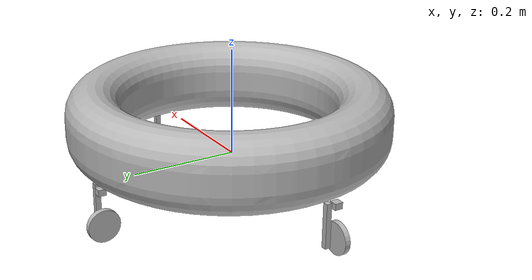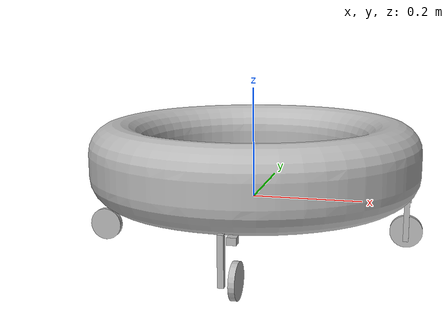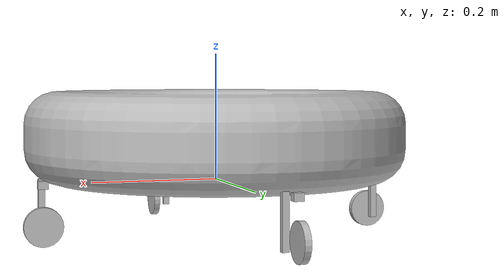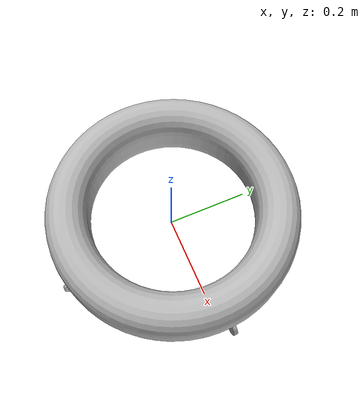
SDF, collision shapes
<?xml version='1.0'?>
<sdf version='1.7'>
  <model name='wow_craft'>
    <enable_wind>true</enable_wind>

    <link name="base_link">
      <visual name="visual">
        <geometry>
          <mesh>
            <uri>model://wow_craft/meshes/wow_craft3.stl</uri>
          </mesh>
        </geometry>
      </visual>
      <collision name="collision">
        <geometry>
          <mesh>
            <uri>model://wow_craft/meshes/100.stl</uri>
          </mesh>
        </geometry>
      </collision>
      <inertial>
        <pose>0 0 0 0 0 0</pose>
        <mass>10.0</mass>
        <inertia>
          <ixx>0.3</ixx>
          <ixy>0</ixy>
          <iyy>0.3</iyy>
          <iyz>0</iyz>
          <izz>0.6</izz>
        </inertia>
      </inertial>
    </link>

    <link name="thruster_1_link">
      <pose>0.28 0 -0.01 0 0 -1.570796</pose>
      <visual name="visual">
        <geometry>
          <mesh>
            <uri>model://wam-v/meshes/engine.dae</uri>
            <scale>0.1 0.1 0.1</scale>
          </mesh>
        </geometry>
      </visual>
      <collision name="engine_vertical_axis_collision">
        <pose>-0.016 0 -0.0215 0 0 0</pose>
        <geometry>
          <box>
            <size>0.01 0.01 0.083</size>
          </box>
        </geometry>
      </collision>
      <collision name="engine_rear_end_collision">
        <pose>-0.034 0 0.012 0 0 0</pose>
        <geometry>
          <box>
            <size>0.015 0.015 0.012</size>
          </box>
        </geometry>
      </collision>
      <inertial>
        <mass>0.1</mass>
        <inertia>
          <ixx>0.0001</ixx>
          <ixy>0</ixy>
          <iyy>0.0001</iyy>
          <iyz>0</iyz>
          <izz>0.0001</izz>
        </inertia>
      </inertial>
    </link>
    <joint name="thruster_1_joint" type="revolute">
      <parent>base_link</parent>
      <child>thruster_1_link</child>
      <axis>
        <xyz>0 0 1</xyz>
        <limit>
          <lower>0</lower>
          <upper>0</upper>
        </limit>
        <dynamics>
          <damping>0.05</damping>
        </dynamics>
      </axis>
    </joint>

    <link name="thruster_1_propeller_link">
      <pose relative_to="thruster_1_propeller_joint">0 0 0 0 0 0</pose>
      <visual name="visual">
        <geometry>
          <mesh>
            <uri>model://wam-v/meshes/propeller.dae</uri>
            <scale>0.1 0.1 0.1</scale>
          </mesh>
        </geometry>
      </visual>
      <collision name="collision">
        <pose>-0.011 0 0 0 1.570796 0</pose>
        <geometry>
          <cylinder>
            <length>0.01</length>
            <radius>0.03</radius>
          </cylinder>
        </geometry>
      </collision>
      <inertial>
        <mass>0.1</mass>
        <inertia>
          <ixx>0.0001</ixx>
          <ixy>0</ixy>
          <iyy>0.0001</iyy>
          <iyz>0</iyz>
          <izz>0.0001</izz>
        </inertia>
      </inertial>
    </link>
    <joint name="thruster_1_propeller_joint" type="revolute">
      <pose relative_to="thruster_1_link">-0.0278156 0 -0.0509371 0 0 0</pose>
      <parent>thruster_1_link</parent>
      <child>thruster_1_propeller_link</child>
      <axis>
        <xyz>1 0 0</xyz>
        <dynamics>
          <damping>0.01</damping>
        </dynamics>
        <limit>
          <lower>-1e+16</lower>
          <upper>1e+16</upper>
        </limit>
      </axis>
    </joint>

    <link name="thruster_2_link">
      <pose>0 0.28 -0.01 0 0 0</pose>
      <visual name="visual">
        <geometry>
          <mesh>
            <uri>model://wam-v/meshes/engine.dae</uri>
            <scale>0.1 0.1 0.1</scale>
          </mesh>
        </geometry>
      </visual>
      <collision name="engine_vertical_axis_collision">
        <pose>-0.016 0 -0.0215 0 0 0</pose>
        <geometry>
          <box>
            <size>0.01 0.01 0.083</size>
          </box>
        </geometry>
      </collision>
      <collision name="engine_rear_end_collision">
        <pose>-0.034 0 0.012 0 0 0</pose>
        <geometry>
          <box>
            <size>0.015 0.015 0.012</size>
          </box>
        </geometry>
      </collision>
      <inertial>
        <mass>0.1</mass>
        <inertia>
          <ixx>0.0001</ixx>
          <ixy>0</ixy>
          <iyy>0.0001</iyy>
          <iyz>0</iyz>
          <izz>0.0001</izz>
        </inertia>
      </inertial>
    </link>
    <joint name="thruster_2_joint" type="revolute">
      <parent>base_link</parent>
      <child>thruster_2_link</child>
      <axis>
        <xyz>0 0 1</xyz>
        <limit>
          <lower>0</lower>
          <upper>0</upper>
        </limit>
        <dynamics>
          <damping>0.05</damping>
        </dynamics>
      </axis>
    </joint>

    <link name="thruster_2_propeller_link">
      <pose relative_to="thruster_2_propeller_joint">0 0 0 0 0 0</pose>
      <visual name="visual">
        <geometry>
          <mesh>
            <uri>model://wam-v/meshes/propeller.dae</uri>
            <scale>0.1 0.1 0.1</scale>
          </mesh>
        </geometry>
      </visual>
      <collision name="collision">
        <pose>-0.011 0 0 0 1.570796 0</pose>
        <geometry>
          <cylinder>
            <length>0.01</length>
            <radius>0.03</radius>
          </cylinder>
        </geometry>
      </collision>
      <inertial>
        <mass>0.1</mass>
        <inertia>
          <ixx>0.0001</ixx>
          <ixy>0</ixy>
          <iyy>0.0001</iyy>
          <iyz>0</iyz>
          <izz>0.0001</izz>
        </inertia>
      </inertial>
    </link>
    <joint name="thruster_2_propeller_joint" type="revolute">
      <pose relative_to="thruster_2_link">-0.0278156 0 -0.0509371 0 0 0</pose>
      <parent>thruster_2_link</parent>
      <child>thruster_2_propeller_link</child>
      <axis>
        <xyz>1 0 0</xyz>
        <dynamics>
          <damping>0.01</damping>
        </dynamics>
        <limit>
          <lower>-1e+16</lower>
          <upper>1e+16</upper>
        </limit>
      </axis>
    </joint>

    <link name="thruster_3_link">
      <pose>-0.28 0 -0.01 0 0 1.570796</pose>
      <visual name="visual">
        <geometry>
          <mesh>
            <uri>model://wam-v/meshes/engine.dae</uri>
            <scale>0.1 0.1 0.1</scale>
          </mesh>
        </geometry>
      </visual>
      <collision name="engine_vertical_axis_collision">
        <pose>-0.016 0 -0.0215 0 0 0</pose>
        <geometry>
          <box>
            <size>0.01 0.01 0.083</size>
          </box>
        </geometry>
      </collision>
      <collision name="engine_rear_end_collision">
        <pose>-0.034 0 0.012 0 0 0</pose>
        <geometry>
          <box>
            <size>0.015 0.015 0.012</size>
          </box>
        </geometry>
      </collision>
      <inertial>
        <mass>0.1</mass>
        <inertia>
          <ixx>0.0001</ixx>
          <ixy>0</ixy>
          <iyy>0.0001</iyy>
          <iyz>0</iyz>
          <izz>0.0001</izz>
        </inertia>
      </inertial>
    </link>
    <joint name="thruster_3_joint" type="revolute">
      <parent>base_link</parent>
      <child>thruster_3_link</child>
      <axis>
        <xyz>0 0 1</xyz>
        <limit>
          <lower>0</lower>
          <upper>0</upper>
        </limit>
        <dynamics>
          <damping>0.05</damping>
        </dynamics>
      </axis>
    </joint>

    <link name="thruster_3_propeller_link">
      <pose relative_to="thruster_3_propeller_joint">0 0 0 0 0 0</pose>
      <visual name="visual">
        <geometry>
          <mesh>
            <uri>model://wam-v/meshes/propeller.dae</uri>
            <scale>0.1 0.1 0.1</scale>
          </mesh>
        </geometry>
      </visual>
      <collision name="collision">
        <pose>-0.011 0 0 0 1.570796 0</pose>
        <geometry>
          <cylinder>
            <length>0.01</length>
            <radius>0.03</radius>
          </cylinder>
        </geometry>
      </collision>
      <inertial>
        <mass>0.1</mass>
        <inertia>
          <ixx>0.0001</ixx>
          <ixy>0</ixy>
          <iyy>0.0001</iyy>
          <iyz>0</iyz>
          <izz>0.0001</izz>
        </inertia>
      </inertial>
    </link>
    <joint name="thruster_3_propeller_joint" type="revolute">
      <pose relative_to="thruster_3_link">-0.0278156 0 -0.0509371 0 0 0</pose>
      <parent>thruster_3_link</parent>
      <child>thruster_3_propeller_link</child>
      <axis>
        <xyz>1 0 0</xyz>
        <dynamics>
          <damping>0.01</damping>
        </dynamics>
        <limit>
          <lower>-1e+16</lower>
          <upper>1e+16</upper>
        </limit>
      </axis>
    </joint>

    <link name="thruster_4_link">
      <pose>0 -0.28 -0.01 0 0 3.141592</pose>
      <visual name="visual">
        <geometry>
          <mesh>
            <uri>model://wam-v/meshes/engine.dae</uri>
            <scale>0.1 0.1 0.1</scale>
          </mesh>
        </geometry>
      </visual>
      <collision name="engine_vertical_axis_collision">
        <pose>-0.016 0 -0.0215 0 0 0</pose>
        <geometry>
          <box>
            <size>0.01 0.01 0.083</size>
          </box>
        </geometry>
      </collision>
      <collision name="engine_rear_end_collision">
        <pose>-0.034 0 0.012 0 0 0</pose>
        <geometry>
          <box>
            <size>0.015 0.015 0.012</size>
          </box>
        </geometry>
      </collision>
      <inertial>
        <mass>0.1</mass>
        <inertia>
          <ixx>0.0001</ixx>
          <ixy>0</ixy>
          <iyy>0.0001</iyy>
          <iyz>0</iyz>
          <izz>0.0001</izz>
        </inertia>
      </inertial>
    </link>
    <joint name="thruster_4_joint" type="revolute">
      <parent>base_link</parent>
      <child>thruster_4_link</child>
      <axis>
        <xyz>0 0 1</xyz>
        <limit>
          <lower>0</lower>
          <upper>0</upper>
        </limit>
        <dynamics>
          <damping>0.05</damping>
        </dynamics>
      </axis>
    </joint>

    <link name="thruster_4_propeller_link">
      <pose relative_to="thruster_4_propeller_joint">0 0 0 0 0 0</pose>
      <visual name="visual">
        <geometry>
          <mesh>
            <uri>model://wam-v/meshes/propeller.dae</uri>
            <scale>0.1 0.1 0.1</scale>
          </mesh>
        </geometry>
      </visual>
      <collision name="collision">
        <pose>-0.011 0 0 0 1.570796 0</pose>
        <geometry>
          <cylinder>
            <length>0.01</length>
            <radius>0.03</radius>
          </cylinder>
        </geometry>
      </collision>
      <inertial>
        <mass>0.1</mass>
        <inertia>
          <ixx>0.0001</ixx>
          <ixy>0</ixy>
          <iyy>0.0001</iyy>
          <iyz>0</iyz>
          <izz>0.0001</izz>
        </inertia>
      </inertial>
    </link>
    <joint name="thruster_4_propeller_joint" type="revolute">
      <pose relative_to="thruster_4_link">-0.0278156 0 -0.0509371 0 0 0</pose>
      <parent>thruster_4_link</parent>
      <child>thruster_4_propeller_link</child>
      <axis>
        <xyz>1 0 0</xyz>
        <dynamics>
          <damping>0.01</damping>
        </dynamics>
        <limit>
          <lower>-1e+16</lower>
          <upper>1e+16</upper>
        </limit>
      </axis>
    </joint>

    <!-- Sensors -->
    <link name="imu_link">
      <inertial>
        <pose>0 0 0 0 0 0</pose>
        <mass>0.15</mass>
        <inertia>
          <ixx>0.00001</ixx>
          <ixy>0</ixy>
          <ixz>0</ixz>
          <iyy>0.00002</iyy>
          <iyz>0</iyz>
          <izz>0.00002</izz>
        </inertia>
      </inertial>
      <sensor name="imu_sensor" type="imu">
        <pose>0 0 0 0 0 0</pose>
        <always_on>1</always_on>
        <update_rate>1000.0</update_rate>
      </sensor>
    </link>
    <joint name="imu_joint" type="revolute">
      <child>imu_link</child>
      <parent>base_link</parent>
      <axis>
        <xyz>0 0 1</xyz>
        <limit>
          <lower>0</lower>
          <upper>0</upper>
          <effort>0</effort>
          <velocity>0</velocity>
        </limit>
        <dynamics>
          <damping>1.0</damping>
        </dynamics>
      </axis>
    </joint>

    <!-- Joint state and force plugins -->
    <plugin filename="gz-sim-joint-state-publisher-system"
      name="gz::sim::systems::JointStatePublisher">
    </plugin>
    <plugin filename="gz-sim-apply-joint-force-system"
      name="gz::sim::systems::ApplyJointForce">
      <joint_name>thruster_1_joint</joint_name>
    </plugin>
    <plugin filename="gz-sim-apply-joint-force-system"
      name="gz::sim::systems::ApplyJointForce">
      <joint_name>thruster_2_joint</joint_name>
    </plugin>
    <plugin filename="gz-sim-apply-joint-force-system"
      name="gz::sim::systems::ApplyJointForce">
      <joint_name>thruster_3_joint</joint_name>
    </plugin>
    <plugin filename="gz-sim-apply-joint-force-system"
      name="gz::sim::systems::ApplyJointForce">
      <joint_name>thruster_4_joint</joint_name>
    </plugin>

    <!-- Thruster plugins -->
    <plugin
        filename="gz-sim-thruster-system"
        name="gz::sim::systems::Thruster">
      <namespace>wow_craft</namespace>
      <joint_name>thruster_1_propeller_joint</joint_name>
      <use_angvel_cmd>0</use_angvel_cmd>
      <fluid_density>1000</fluid_density>
      <propeller_diameter>0.06</propeller_diameter>
      <thrust_coefficient>0.01</thrust_coefficient>
      <velocity_control>1</velocity_control>
      <max_thrust_cmd>200.0</max_thrust_cmd>
      <min_thrust_cmd>-200.0</min_thrust_cmd>
    </plugin>

    <plugin
        filename="gz-sim-thruster-system"
        name="gz::sim::systems::Thruster">
      <namespace>wow_craft</namespace>
      <joint_name>thruster_2_propeller_joint</joint_name>
      <use_angvel_cmd>0</use_angvel_cmd>
      <fluid_density>1000</fluid_density>
      <propeller_diameter>0.06</propeller_diameter>
      <thrust_coefficient>0.01</thrust_coefficient>
      <velocity_control>1</velocity_control>
      <max_thrust_cmd>200.0</max_thrust_cmd>
      <min_thrust_cmd>-200.0</min_thrust_cmd>
    </plugin>

    <plugin
        filename="gz-sim-thruster-system"
        name="gz::sim::systems::Thruster">
      <namespace>wow_craft</namespace>
      <joint_name>thruster_3_propeller_joint</joint_name>
      <use_angvel_cmd>0</use_angvel_cmd>
      <fluid_density>1000</fluid_density>
      <propeller_diameter>0.06</propeller_diameter>
      <thrust_coefficient>0.01</thrust_coefficient>
      <velocity_control>1</velocity_control>
      <max_thrust_cmd>200.0</max_thrust_cmd>
      <min_thrust_cmd>-200.0</min_thrust_cmd>
    </plugin>

    <plugin
        filename="gz-sim-thruster-system"
        name="gz::sim::systems::Thruster">
      <namespace>wow_craft</namespace>
      <joint_name>thruster_4_propeller_joint</joint_name>
      <use_angvel_cmd>0</use_angvel_cmd>
      <fluid_density>1000</fluid_density>
      <propeller_diameter>0.06</propeller_diameter>
      <thrust_coefficient>0.01</thrust_coefficient>
      <velocity_control>1</velocity_control>
      <max_thrust_cmd>200.0</max_thrust_cmd>
      <min_thrust_cmd>-200.0</min_thrust_cmd>
    </plugin>

    <!-- Hydrodynamics plugin -->
    <plugin
        filename="gz-waves1-hydrodynamics-system"
        name="gz::sim::systems::Hydrodynamics">
        <enable>wow_craft</enable>

        <hydrodynamics>
          <damping_on>1</damping_on>
          <viscous_drag_on>1</viscous_drag_on>
          <pressure_drag_on>1</pressure_drag_on>

          <!-- Linear and Angular Damping -->
          <cDampL1>1.0E-6</cDampL1>
          <cDampL2>1.0E-6</cDampL2>
          <cDampR1>1.0E-6</cDampR1>
          <cDampR2>1.0E-6</cDampR2>

          <!-- 'Pressure' Drag -->
          <cPDrag1>50</cPDrag1>
          <cPDrag2>50</cPDrag2>
          <fPDrag>1.0</fPDrag>
          <cSDrag1>50</cSDrag1>
          <cSDrag2>50</cSDrag2>
          <fSDrag>0.4</fSDrag>
          <vRDrag>1.0</vRDrag>
        </hydrodynamics>
    </plugin>

    <!-- ArduPilot plugin -->
    <plugin name="ArduPilotPlugin" filename="ArduPilotPlugin">
      <fdm_addr>127.0.0.1</fdm_addr>
      <fdm_port_in>9002</fdm_port_in>
      <connectionTimeoutMaxCount>5</connectionTimeoutMaxCount>
      <lock_step>1</lock_step>
      <modelXYZToAirplaneXForwardZDown>0 0 0 3.141593 0 0</modelXYZToAirplaneXForwardZDown>
      <gazeboXYZToNED>0 0 0 3.141593 0 1.57079632</gazeboXYZToNED>
      <imuName>imu_sensor</imuName>

      <!--
        SERVO1_FUNCTION 26 (GroundSteering)
      -->
      <control channel="0">
        <jointName>thruster_1_joint</jointName>
        <useForce>1</useForce>
        <multiplier>3.1415926</multiplier>
        <offset>-0.5</offset>
        <servo_min>1000</servo_min>
        <servo_max>2000</servo_max>
        <type>POSITION</type>
        <p_gain>500.0</p_gain>
        <i_gain>0</i_gain>
        <d_gain>10</d_gain>
        <i_max>-1</i_max>
        <i_min>0</i_min>
        <cmd_max>5000.0</cmd_max>
        <cmd_min>-5000.0</cmd_min>
      </control>

      <control channel="0">
        <jointName>thruster_2_joint</jointName>
        <useForce>1</useForce>
        <multiplier>3.1415926</multiplier>
        <offset>-0.5</offset>
        <servo_min>1000</servo_min>
        <servo_max>2000</servo_max>
        <type>POSITION</type>
        <p_gain>500.0</p_gain>
        <i_gain>0</i_gain>
        <d_gain>10</d_gain>
        <i_max>-1</i_max>
        <i_min>0</i_min>
        <cmd_max>5000.0</cmd_max>
        <cmd_min>-5000.0</cmd_min>
      </control>

      <control channel="0">
        <jointName>thruster_3_joint</jointName>
        <useForce>1</useForce>
        <multiplier>3.1415926</multiplier>
        <offset>-0.5</offset>
        <servo_min>1000</servo_min>
        <servo_max>2000</servo_max>
        <type>POSITION</type>
        <p_gain>500.0</p_gain>
        <i_gain>0</i_gain>
        <d_gain>10</d_gain>
        <i_max>-1</i_max>
        <i_min>0</i_min>
        <cmd_max>5000.0</cmd_max>
        <cmd_min>-5000.0</cmd_min>
      </control>

      <control channel="0">
        <jointName>thruster_4_joint</jointName>
        <useForce>1</useForce>
        <multiplier>3.1415926</multiplier>
        <offset>-0.5</offset>
        <servo_min>1000</servo_min>
        <servo_max>2000</servo_max>
        <type>POSITION</type>
        <p_gain>500.0</p_gain>
        <i_gain>0</i_gain>
        <d_gain>10</d_gain>
        <i_max>-1</i_max>
        <i_min>0</i_min>
        <cmd_max>5000.0</cmd_max>
        <cmd_min>-5000.0</cmd_min>
      </control>

      <control channel="2">
        <jointName>thruster_1_propeller_joint</jointName>
        <useForce>1</useForce>
        <multiplier>3000</multiplier>
        <offset>-0.5</offset>
        <servo_min>1000</servo_min>
        <servo_max>2000</servo_max>
        <type>COMMAND</type>
        <cmd_topic>/model/wow_craft/joint/thruster_1_propeller_joint/cmd_thrust</cmd_topic>
      </control>

      <control channel="2">
        <jointName>thruster_2_propeller_joint</jointName>
        <useForce>1</useForce>
        <multiplier>3000</multiplier>
        <offset>-0.5</offset>
        <servo_min>1000</servo_min>
        <servo_max>2000</servo_max>
        <type>COMMAND</type>
        <cmd_topic>/model/wow_craft/joint/thruster_2_propeller_joint/cmd_thrust</cmd_topic>
      </control>

      <control channel="2">
        <jointName>thruster_3_propeller_joint</jointName>
        <useForce>1</useForce>
        <multiplier>3000</multiplier>
        <offset>-0.5</offset>
        <servo_min>1000</servo_min>
        <servo_max>2000</servo_max>
        <type>COMMAND</type>
        <cmd_topic>/model/wow_craft/joint/thruster_3_propeller_joint/cmd_thrust</cmd_topic>
      </control>

      <control channel="2">
        <jointName>thruster_4_propeller_joint</jointName>
        <useForce>1</useForce>
        <multiplier>3000</multiplier>
        <offset>-0.5</offset>
        <servo_min>1000</servo_min>
        <servo_max>2000</servo_max>
        <type>COMMAND</type>
        <cmd_topic>/model/wow_craft/joint/thruster_4_propeller_joint/cmd_thrust</cmd_topic>
      </control>
    </plugin>
  </model>
</sdf>
